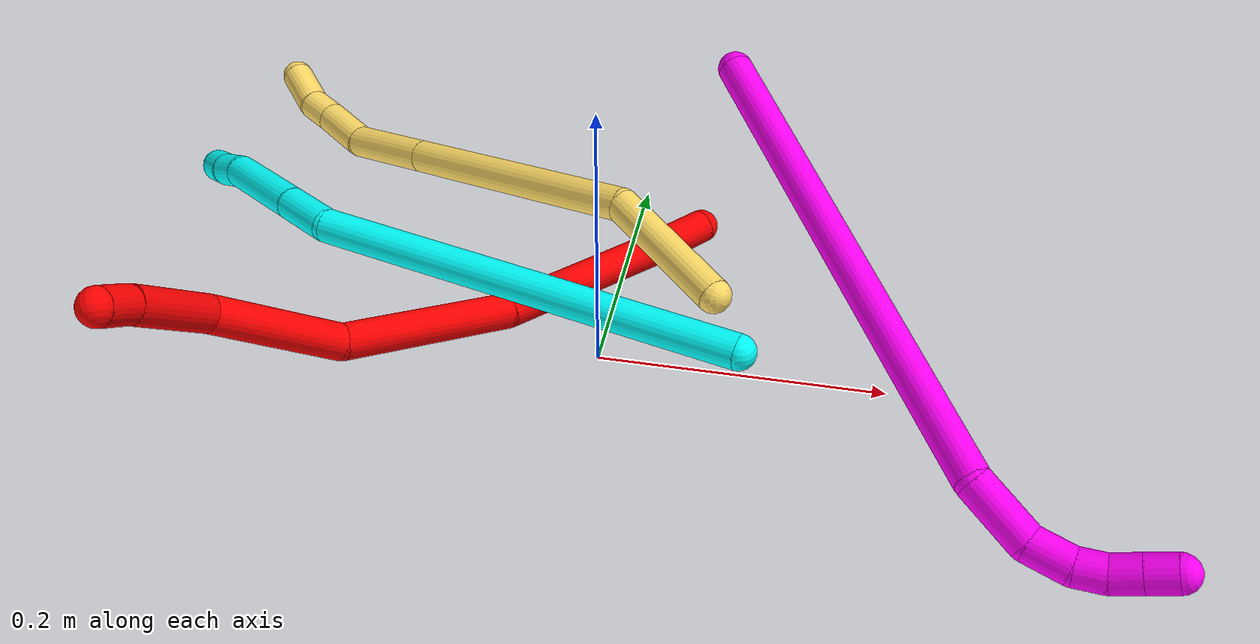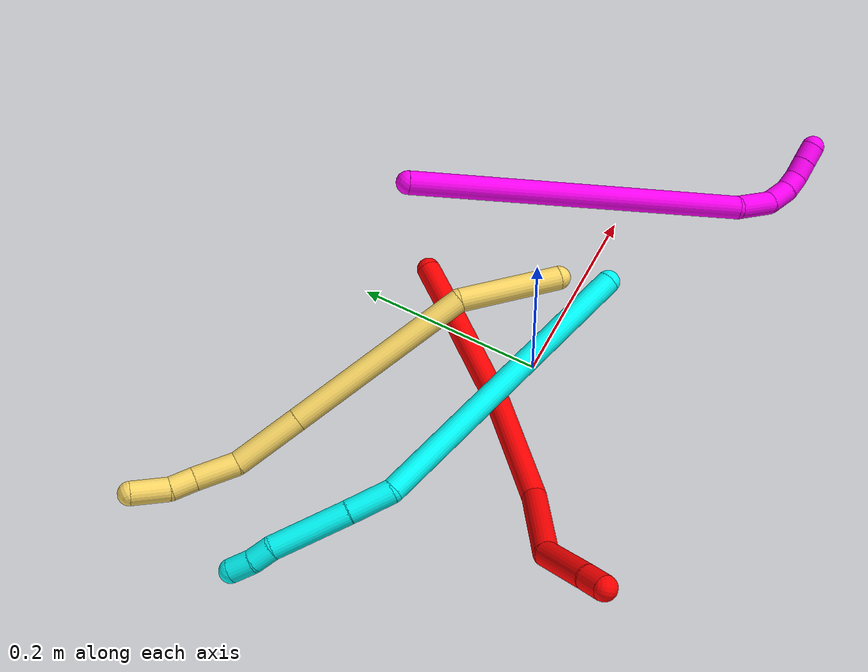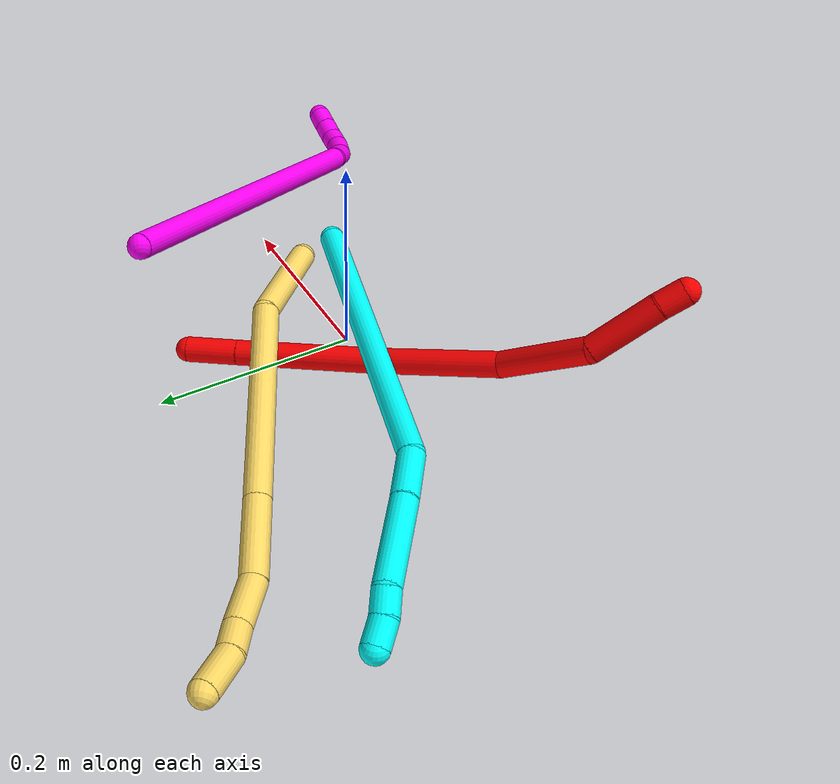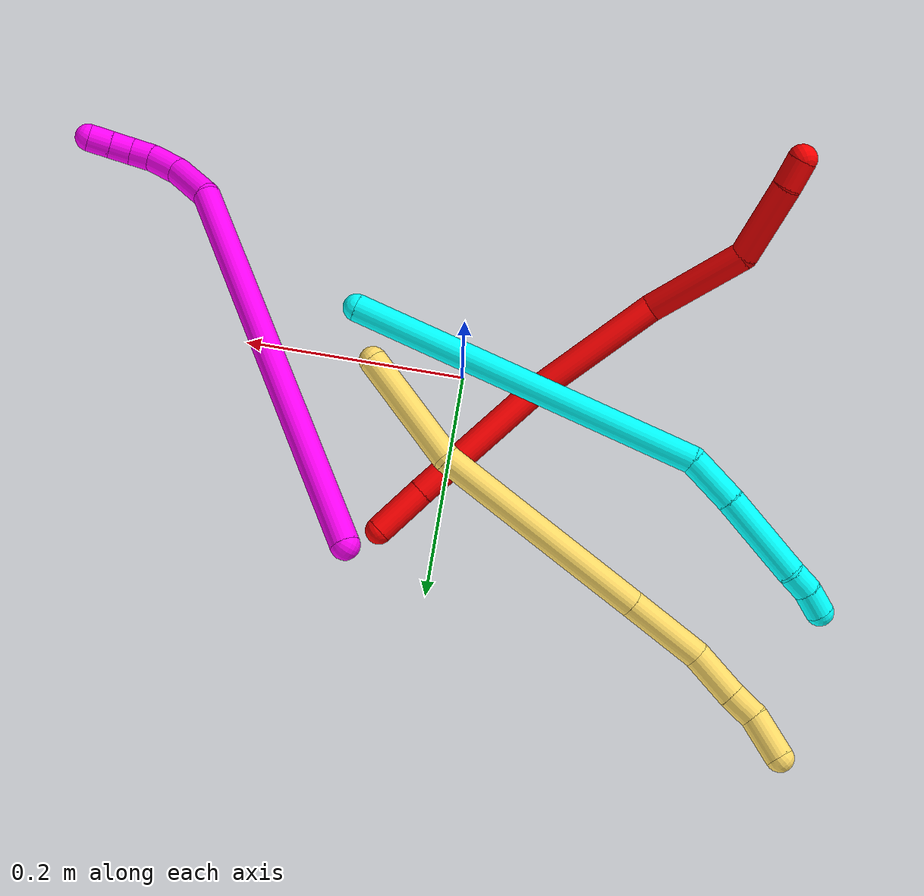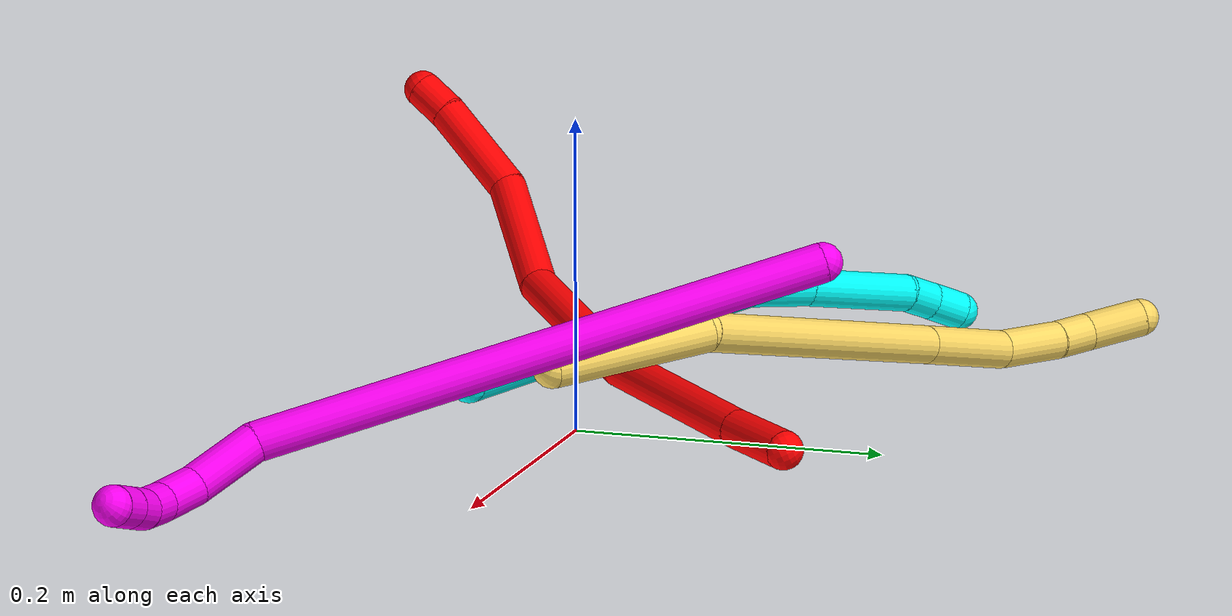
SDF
<sdf version="1.7">
 <world name="default">
  <model name="photoneo_s_sensor">
   <static>1</static>
   <pose>0 0 2 1.57079 1.57079 3.14159</pose>
   <link name="link">
    <inertial><mass>0.1</mass></inertial>
    <sensor name="sensor" type="depth">
     <update_rate>30</update_rate>
     <camera>
      <horizontal_fov>1.22</horizontal_fov>
      <image><width>1920</width><height>1200</height><format>B8G8R8</format></image>
      <clip><near>0.1</near><far>4</far></clip>
      <depth_camera><output>points</output></depth_camera>
     </camera>
     <plugin name="camera_plugin" filename="libgazebo_ros_depth_camera.so">
      <baseline>0.2</baseline>
      <alwaysOn>1</alwaysOn>
      <updateRate>0.0</updateRate>
      <cameraName>camera_ir</cameraName>
      <imageTopicName>/camera/color/image_raw</imageTopicName>
      <cameraInfoTopicName>/camera/color/camera_info</cameraInfoTopicName>
      <depthImageTopicName>/camera/depth/image_raw</depthImageTopicName>
      <depthImageCameraInfoTopicName>/camera/depth/camera_info</depthImageCameraInfoTopicName>
      <pointCloudTopicName>/camera/depth/points</pointCloudTopicName>
      <frameName>fr_optical</frameName>
      <pointCloudCutoff>0.1</pointCloudCutoff>
      <pointCloudCutoffMax>2.0</pointCloudCutoffMax>
      <distortionK1>0</distortionK1>
      <distortionK2>0</distortionK2>
      <distortionK3>0</distortionK3>
      <distortionT1>0</distortionT1>
      <distortionT2>0</distortionT2>
      <CxPrime>0</CxPrime>
      <Cx>0</Cx>
      <Cy>0</Cy>
      <focalLength>0</focalLength>
      <hackBaseline>0</hackBaseline>
     </plugin>
    </sensor>
   </link>
  </model>
  <model name="bin">
   <static>1</static>
   <link name="bottom">
    <collision name="collision-bottom">
     <pose>0 0 -0.01 0 -0 0</pose>
     <geometry><box><size>0.8 0.6 0.02</size></box></geometry>
     <surface>
      <friction><ode><mu>100</mu><mu2>100</mu2></ode></friction>
      <contact><collide_bitmask>65535</collide_bitmask></contact>
     </surface>
    </collision>
   </link>
   <link name="west_wall">
    <collision name="collision-west_wall">
     <pose>-0.41 0 0.1 0 -0 0</pose>
     <geometry><box><size>0.02 0.6 0.2</size></box></geometry>
     <surface>
      <friction><ode><mu>100</mu><mu2>100</mu2></ode></friction>
      <contact><collide_bitmask>65535</collide_bitmask></contact>
     </surface>
    </collision>
   </link>
   <link name="east_wall">
    <collision name="collision-east_wall">
     <pose>0.41 0 0.1 0 -0 0</pose>
     <geometry><box><size>0.02 0.6 0.2</size></box></geometry>
     <surface>
      <friction><ode><mu>100</mu><mu2>100</mu2></ode></friction>
      <contact><collide_bitmask>65535</collide_bitmask></contact>
     </surface>
    </collision>
   </link>
   <link name="south_wall">
    <collision name="collision-south_wall">
     <pose>0 -0.31 0.1 0 -0 0</pose>
     <geometry><box><size>0.8 0.02 0.2</size></box></geometry>
     <surface>
      <friction><ode><mu>100</mu><mu2>100</mu2></ode></friction>
      <contact><collide_bitmask>65535</collide_bitmask></contact>
     </surface>
    </collision>
   </link>
   <link name="north_wall">
    <collision name="collision-north_wall">
     <pose>0 0.31 0.1 0 -0 0</pose>
     <geometry><box><size>0.8 0.02 0.2</size></box></geometry>
     <surface>
      <friction><ode><mu>100</mu><mu2>100</mu2></ode></friction>
      <contact><collide_bitmask>65535</collide_bitmask></contact>
     </surface>
    </collision>
   </link>
  </model>
  <model name="2">
   <static>0</static>
   <link name="2">
    <collision name="collision-cylinder-e_1_1_4">
     <pose>-0.018717 -0.014627 0.008482 1.0453 -0.836107 -0.501084</pose>
     <geometry><cylinder><radius>0.0125</radius><length>0.050447</length></cylinder></geometry>
     <surface>
      <friction><ode><mu>1.16</mu><mu2>1.16</mu2><slip1>0</slip1><slip2>0</slip2></ode></friction>
      <contact><ode><kp>1e+06</kp><kd>1</kd><max_vel>0</max_vel><min_depth>0.001</min_depth></ode></contact>
     </surface>
    </collision>
    <visual name="visual-cylinder-e_1_1_4">
     <pose>-0.018717 -0.014627 0.008482 1.0453 -0.836107 -0.501084</pose>
     <geometry><cylinder><radius>0.0125</radius><length>0.050447</length></cylinder></geometry>
     <material><ambient>1 0 0 1</ambient></material>
    </visual>
    <collision name="collision-cylinder-e_2_4_5">
     <pose>-0.088711 -0.067973 0.037568 1.08176 -0.863214 -0.539759</pose>
     <geometry><cylinder><radius>0.0125</radius><length>0.134952</length></cylinder></geometry>
     <surface>
      <friction><ode><mu>1.16</mu><mu2>1.16</mu2><slip1>0</slip1><slip2>0</slip2></ode></friction>
      <contact><ode><kp>1e+06</kp><kd>1</kd><max_vel>0</max_vel><min_depth>0.001</min_depth></ode></contact>
     </surface>
    </collision>
    <visual name="visual-cylinder-e_2_4_5">
     <pose>-0.088711 -0.067973 0.037568 1.08176 -0.863214 -0.539759</pose>
     <geometry><cylinder><radius>0.0125</radius><length>0.134952</length></cylinder></geometry>
     <material><ambient>1 0 0 1</ambient></material>
    </visual>
    <collision name="collision-cylinder-e_3_5_6">
     <pose>-0.192421 -0.14106 0.066809 1.3246 -0.976448 -0.785302</pose>
     <geometry><cylinder><radius>0.0125</radius><length>0.126572</length></cylinder></geometry>
     <surface>
      <friction><ode><mu>1.16</mu><mu2>1.16</mu2><slip1>0</slip1><slip2>0</slip2></ode></friction>
      <contact><ode><kp>1e+06</kp><kd>1</kd><max_vel>0</max_vel><min_depth>0.001</min_depth></ode></contact>
     </surface>
    </collision>
    <visual name="visual-cylinder-e_3_5_6">
     <pose>-0.192421 -0.14106 0.066809 1.3246 -0.976448 -0.785302</pose>
     <geometry><cylinder><radius>0.0125</radius><length>0.126572</length></cylinder></geometry>
     <material><ambient>1 0 0 1</ambient></material>
    </visual>
    <collision name="collision-cylinder-e_4_6_7">
     <pose>-0.288249 -0.19157 0.068105 1.99765 -1.18289 -1.61321</pose>
     <geometry><cylinder><radius>0.0125</radius><length>0.093754</length></cylinder></geometry>
     <surface>
      <friction><ode><mu>1.16</mu><mu2>1.16</mu2><slip1>0</slip1><slip2>0</slip2></ode></friction>
      <contact><ode><kp>1e+06</kp><kd>1</kd><max_vel>0</max_vel><min_depth>0.001</min_depth></ode></contact>
     </surface>
    </collision>
    <visual name="visual-cylinder-e_4_6_7">
     <pose>-0.288249 -0.19157 0.068105 1.99765 -1.18289 -1.61321</pose>
     <geometry><cylinder><radius>0.0125</radius><length>0.093754</length></cylinder></geometry>
     <material><ambient>1 0 0 1</ambient></material>
    </visual>
    <collision name="collision-cylinder-e_5_7_8">
     <pose>-0.365581 -0.207243 0.066663 -0.079081 -1.39817 0.066495</pose>
     <geometry><cylinder><radius>0.0125</radius><length>0.068901</length></cylinder></geometry>
     <surface>
      <friction><ode><mu>1.16</mu><mu2>1.16</mu2><slip1>0</slip1><slip2>0</slip2></ode></friction>
      <contact><ode><kp>1e+06</kp><kd>1</kd><max_vel>0</max_vel><min_depth>0.001</min_depth></ode></contact>
     </surface>
    </collision>
    <visual name="visual-cylinder-e_5_7_8">
     <pose>-0.365581 -0.207243 0.066663 -0.079081 -1.39817 0.066495</pose>
     <geometry><cylinder><radius>0.0125</radius><length>0.068901</length></cylinder></geometry>
     <material><ambient>1 0 0 1</ambient></material>
    </visual>
    <collision name="collision-cylinder-e_6_8_2">
     <pose>-0.411651 -0.207368 0.076231 0.160038 -1.27354 -0.118468</pose>
     <geometry><cylinder><radius>0.0125</radius><length>0.025375</length></cylinder></geometry>
     <surface>
      <friction><ode><mu>1.16</mu><mu2>1.16</mu2><slip1>0</slip1><slip2>0</slip2></ode></friction>
      <contact><ode><kp>1e+06</kp><kd>1</kd><max_vel>0</max_vel><min_depth>0.001</min_depth></ode></contact>
     </surface>
    </collision>
    <visual name="visual-cylinder-e_6_8_2">
     <pose>-0.411651 -0.207368 0.076231 0.160038 -1.27354 -0.118468</pose>
     <geometry><cylinder><radius>0.0125</radius><length>0.025375</length></cylinder></geometry>
     <material><ambient>1 0 0 1</ambient></material>
    </visual>
    <collision name="collision-sphere-2">
     <pose>-0.423782 -0.20796 0.0799 0 -0 0</pose>
     <geometry><sphere><radius>0.0125</radius></sphere></geometry>
     <surface>
      <friction><ode><mu>1.16</mu><mu2>1.16</mu2><slip1>0</slip1><slip2>0</slip2></ode></friction>
      <contact><ode><kp>1e+06</kp><kd>1</kd><max_vel>0</max_vel><min_depth>0.001</min_depth></ode></contact>
     </surface>
    </collision>
    <visual name="visual-sphere-2">
     <pose>-0.423782 -0.20796 0.0799 0 -0 0</pose>
     <geometry><sphere><radius>0.0125</radius></sphere></geometry>
     <material><ambient>1 0 0 1</ambient></material>
    </visual>
    <collision name="collision-sphere-4">
     <pose>-0.037434 -0.029254 0.016964 0 -0 0</pose>
     <geometry><sphere><radius>0.0125</radius></sphere></geometry>
     <surface>
      <friction><ode><mu>1.16</mu><mu2>1.16</mu2><slip1>0</slip1><slip2>0</slip2></ode></friction>
      <contact><ode><kp>1e+06</kp><kd>1</kd><max_vel>0</max_vel><min_depth>0.001</min_depth></ode></contact>
     </surface>
    </collision>
    <visual name="visual-sphere-4">
     <pose>-0.037434 -0.029254 0.016964 0 -0 0</pose>
     <geometry><sphere><radius>0.0125</radius></sphere></geometry>
     <material><ambient>1 0 0 1</ambient></material>
    </visual>
    <collision name="collision-sphere-1">
     <geometry><sphere><radius>0.0125</radius></sphere></geometry>
     <surface>
      <friction><ode><mu>1.16</mu><mu2>1.16</mu2><slip1>0</slip1><slip2>0</slip2></ode></friction>
      <contact><ode><kp>1e+06</kp><kd>1</kd><max_vel>0</max_vel><min_depth>0.001</min_depth></ode></contact>
     </surface>
    </collision>
    <visual name="visual-sphere-1">
     <geometry><sphere><radius>0.0125</radius></sphere></geometry>
     <material><ambient>1 0 0 1</ambient></material>
    </visual>
    <collision name="collision-sphere-8">
     <pose>-0.39952 -0.206775 0.072563 0 -0 0</pose>
     <geometry><sphere><radius>0.0125</radius></sphere></geometry>
     <surface>
      <friction><ode><mu>1.16</mu><mu2>1.16</mu2><slip1>0</slip1><slip2>0</slip2></ode></friction>
      <contact><ode><kp>1e+06</kp><kd>1</kd><max_vel>0</max_vel><min_depth>0.001</min_depth></ode></contact>
     </surface>
    </collision>
    <visual name="visual-sphere-8">
     <pose>-0.39952 -0.206775 0.072563 0 -0 0</pose>
     <geometry><sphere><radius>0.0125</radius></sphere></geometry>
     <material><ambient>1 0 0 1</ambient></material>
    </visual>
    <collision name="collision-sphere-5">
     <pose>-0.139988 -0.106691 0.058172 0 -0 0</pose>
     <geometry><sphere><radius>0.0125</radius></sphere></geometry>
     <surface>
      <friction><ode><mu>1.16</mu><mu2>1.16</mu2><slip1>0</slip1><slip2>0</slip2></ode></friction>
      <contact><ode><kp>1e+06</kp><kd>1</kd><max_vel>0</max_vel><min_depth>0.001</min_depth></ode></contact>
     </surface>
    </collision>
    <visual name="visual-sphere-5">
     <pose>-0.139988 -0.106691 0.058172 0 -0 0</pose>
     <geometry><sphere><radius>0.0125</radius></sphere></geometry>
     <material><ambient>1 0 0 1</ambient></material>
    </visual>
    <collision name="collision-sphere-6">
     <pose>-0.244854 -0.17543 0.075446 0 -0 0</pose>
     <geometry><sphere><radius>0.0125</radius></sphere></geometry>
     <surface>
      <friction><ode><mu>1.16</mu><mu2>1.16</mu2><slip1>0</slip1><slip2>0</slip2></ode></friction>
      <contact><ode><kp>1e+06</kp><kd>1</kd><max_vel>0</max_vel><min_depth>0.001</min_depth></ode></contact>
     </surface>
    </collision>
    <visual name="visual-sphere-6">
     <pose>-0.244854 -0.17543 0.075446 0 -0 0</pose>
     <geometry><sphere><radius>0.0125</radius></sphere></geometry>
     <material><ambient>1 0 0 1</ambient></material>
    </visual>
    <collision name="collision-sphere-7">
     <pose>-0.331643 -0.20771 0.060764 0 -0 0</pose>
     <geometry><sphere><radius>0.0125</radius></sphere></geometry>
     <surface>
      <friction><ode><mu>1.16</mu><mu2>1.16</mu2><slip1>0</slip1><slip2>0</slip2></ode></friction>
      <contact><ode><kp>1e+06</kp><kd>1</kd><max_vel>0</max_vel><min_depth>0.001</min_depth></ode></contact>
     </surface>
    </collision>
    <visual name="visual-sphere-7">
     <pose>-0.331643 -0.20771 0.060764 0 -0 0</pose>
     <geometry><sphere><radius>0.0125</radius></sphere></geometry>
     <material><ambient>1 0 0 1</ambient></material>
    </visual>
    <inertial>
     <pose>-0.19986 -0.130534 0.053733 0 -0 0</pose>
     <mass>0.5</mass>
     <inertia><ixx>-5e-06</ixx><ixy>0</ixy><ixz>0</ixz><iyy>0.000203</iyy><iyz>0</iyz><izz>0.000665</izz></inertia>
    </inertial>
   </link>
   <pose>0.049699 0.151118 0.011488 2.22008 0.789616 0.991381</pose>
  </model>
  <model name="3">
   <static>0</static>
   <link name="3">
    <collision name="collision-cylinder-e_1_1_4">
     <pose>-0.082379 0.137709 0.018798 -1.43513 -0.535045 0.469613</pose>
     <geometry><cylinder><radius>0.0125</radius><length>0.323132</length></cylinder></geometry>
     <surface>
      <friction><ode><mu>1.16</mu><mu2>1.16</mu2><slip1>0</slip1><slip2>0</slip2></ode></friction>
      <contact><ode><kp>1e+06</kp><kd>1</kd><max_vel>0</max_vel><min_depth>0.001</min_depth></ode></contact>
     </surface>
    </collision>
    <visual name="visual-cylinder-e_1_1_4">
     <pose>-0.082379 0.137709 0.018798 -1.43513 -0.535045 0.469613</pose>
     <geometry><cylinder><radius>0.0125</radius><length>0.323132</length></cylinder></geometry>
     <material><ambient>0.003922 1 0.996078 1</ambient></material>
    </visual>
    <collision name="collision-cylinder-e_2_4_5">
     <pose>-0.182928 0.289338 0.043498 -1.16978 -0.876811 0.602039</pose>
     <geometry><cylinder><radius>0.0125</radius><length>0.047274</length></cylinder></geometry>
     <surface>
      <friction><ode><mu>1.16</mu><mu2>1.16</mu2><slip1>0</slip1><slip2>0</slip2></ode></friction>
      <contact><ode><kp>1e+06</kp><kd>1</kd><max_vel>0</max_vel><min_depth>0.001</min_depth></ode></contact>
     </surface>
    </collision>
    <visual name="visual-cylinder-e_2_4_5">
     <pose>-0.182928 0.289338 0.043498 -1.16978 -0.876811 0.602039</pose>
     <geometry><cylinder><radius>0.0125</radius><length>0.047274</length></cylinder></geometry>
     <material><ambient>0.003922 1 0.996078 1</ambient></material>
    </visual>
    <collision name="collision-cylinder-e_3_5_6">
     <pose>-0.233121 0.325754 0.061758 -1.06846 -0.895108 0.553426</pose>
     <geometry><cylinder><radius>0.0125</radius><length>0.082081</length></cylinder></geometry>
     <surface>
      <friction><ode><mu>1.16</mu><mu2>1.16</mu2><slip1>0</slip1><slip2>0</slip2></ode></friction>
      <contact><ode><kp>1e+06</kp><kd>1</kd><max_vel>0</max_vel><min_depth>0.001</min_depth></ode></contact>
     </surface>
    </collision>
    <visual name="visual-cylinder-e_3_5_6">
     <pose>-0.233121 0.325754 0.061758 -1.06846 -0.895108 0.553426</pose>
     <geometry><cylinder><radius>0.0125</radius><length>0.082081</length></cylinder></geometry>
     <material><ambient>0.003922 1 0.996078 1</ambient></material>
    </visual>
    <collision name="collision-cylinder-e_4_6_7">
     <pose>-0.272664 0.354936 0.079731 -0.872324 -0.711039 0.342728</pose>
     <geometry><cylinder><radius>0.0125</radius><length>0.023043</length></cylinder></geometry>
     <surface>
      <friction><ode><mu>1.16</mu><mu2>1.16</mu2><slip1>0</slip1><slip2>0</slip2></ode></friction>
      <contact><ode><kp>1e+06</kp><kd>1</kd><max_vel>0</max_vel><min_depth>0.001</min_depth></ode></contact>
     </surface>
    </collision>
    <visual name="visual-cylinder-e_4_6_7">
     <pose>-0.272664 0.354936 0.079731 -0.872324 -0.711039 0.342728</pose>
     <geometry><cylinder><radius>0.0125</radius><length>0.023043</length></cylinder></geometry>
     <material><ambient>0.003922 1 0.996078 1</ambient></material>
    </visual>
    <collision name="collision-cylinder-e_5_7_2">
     <pose>-0.289534 0.366596 0.091469 -0.682169 -0.869934 0.326917</pose>
     <geometry><cylinder><radius>0.0125</radius><length>0.024469</length></cylinder></geometry>
     <surface>
      <friction><ode><mu>1.16</mu><mu2>1.16</mu2><slip1>0</slip1><slip2>0</slip2></ode></friction>
      <contact><ode><kp>1e+06</kp><kd>1</kd><max_vel>0</max_vel><min_depth>0.001</min_depth></ode></contact>
     </surface>
    </collision>
    <visual name="visual-cylinder-e_5_7_2">
     <pose>-0.289534 0.366596 0.091469 -0.682169 -0.869934 0.326917</pose>
     <geometry><cylinder><radius>0.0125</radius><length>0.024469</length></cylinder></geometry>
     <material><ambient>0.003922 1 0.996078 1</ambient></material>
    </visual>
    <collision name="collision-sphere-2">
     <pose>-0.298884 0.371571 0.097593 0 -0 0</pose>
     <geometry><sphere><radius>0.0125</radius></sphere></geometry>
     <surface>
      <friction><ode><mu>1.16</mu><mu2>1.16</mu2><slip1>0</slip1><slip2>0</slip2></ode></friction>
      <contact><ode><kp>1e+06</kp><kd>1</kd><max_vel>0</max_vel><min_depth>0.001</min_depth></ode></contact>
     </surface>
    </collision>
    <visual name="visual-sphere-2">
     <pose>-0.298884 0.371571 0.097593 0 -0 0</pose>
     <geometry><sphere><radius>0.0125</radius></sphere></geometry>
     <material><ambient>0.003922 1 0.996078 1</ambient></material>
    </visual>
    <collision name="collision-sphere-7">
     <pose>-0.280183 0.361622 0.085344 0 -0 0</pose>
     <geometry><sphere><radius>0.0125</radius></sphere></geometry>
     <surface>
      <friction><ode><mu>1.16</mu><mu2>1.16</mu2><slip1>0</slip1><slip2>0</slip2></ode></friction>
      <contact><ode><kp>1e+06</kp><kd>1</kd><max_vel>0</max_vel><min_depth>0.001</min_depth></ode></contact>
     </surface>
    </collision>
    <visual name="visual-sphere-7">
     <pose>-0.280183 0.361622 0.085344 0 -0 0</pose>
     <geometry><sphere><radius>0.0125</radius></sphere></geometry>
     <material><ambient>0.003922 1 0.996078 1</ambient></material>
    </visual>
    <collision name="collision-sphere-6">
     <pose>-0.265144 0.348251 0.074117 0 -0 0</pose>
     <geometry><sphere><radius>0.0125</radius></sphere></geometry>
     <surface>
      <friction><ode><mu>1.16</mu><mu2>1.16</mu2><slip1>0</slip1><slip2>0</slip2></ode></friction>
      <contact><ode><kp>1e+06</kp><kd>1</kd><max_vel>0</max_vel><min_depth>0.001</min_depth></ode></contact>
     </surface>
    </collision>
    <visual name="visual-sphere-6">
     <pose>-0.265144 0.348251 0.074117 0 -0 0</pose>
     <geometry><sphere><radius>0.0125</radius></sphere></geometry>
     <material><ambient>0.003922 1 0.996078 1</ambient></material>
    </visual>
    <collision name="collision-sphere-5">
     <pose>-0.201098 0.303257 0.0494 0 -0 0</pose>
     <geometry><sphere><radius>0.0125</radius></sphere></geometry>
     <surface>
      <friction><ode><mu>1.16</mu><mu2>1.16</mu2><slip1>0</slip1><slip2>0</slip2></ode></friction>
      <contact><ode><kp>1e+06</kp><kd>1</kd><max_vel>0</max_vel><min_depth>0.001</min_depth></ode></contact>
     </surface>
    </collision>
    <visual name="visual-sphere-5">
     <pose>-0.201098 0.303257 0.0494 0 -0 0</pose>
     <geometry><sphere><radius>0.0125</radius></sphere></geometry>
     <material><ambient>0.003922 1 0.996078 1</ambient></material>
    </visual>
    <collision name="collision-sphere-1">
     <geometry><sphere><radius>0.0125</radius></sphere></geometry>
     <surface>
      <friction><ode><mu>1.16</mu><mu2>1.16</mu2><slip1>0</slip1><slip2>0</slip2></ode></friction>
      <contact><ode><kp>1e+06</kp><kd>1</kd><max_vel>0</max_vel><min_depth>0.001</min_depth></ode></contact>
     </surface>
    </collision>
    <visual name="visual-sphere-1">
     <geometry><sphere><radius>0.0125</radius></sphere></geometry>
     <material><ambient>0.003922 1 0.996078 1</ambient></material>
    </visual>
    <collision name="collision-sphere-4">
     <pose>-0.164759 0.275419 0.037597 0 -0 0</pose>
     <geometry><sphere><radius>0.0125</radius></sphere></geometry>
     <surface>
      <friction><ode><mu>1.16</mu><mu2>1.16</mu2><slip1>0</slip1><slip2>0</slip2></ode></friction>
      <contact><ode><kp>1e+06</kp><kd>1</kd><max_vel>0</max_vel><min_depth>0.001</min_depth></ode></contact>
     </surface>
    </collision>
    <visual name="visual-sphere-4">
     <pose>-0.164759 0.275419 0.037597 0 -0 0</pose>
     <geometry><sphere><radius>0.0125</radius></sphere></geometry>
     <material><ambient>0.003922 1 0.996078 1</ambient></material>
    </visual>
    <inertial>
     <pose>-0.13554 0.204128 0.034551 0 -0 0</pose>
     <mass>0.5</mass>
     <inertia>
      <ixx>0.003298</ixx>
      <ixy>0</ixy>
      <ixz>0</ixz>
      <iyy>0.002185</iyy>
      <iyz>0</iyz>
      <izz>-0.000945</izz>
     </inertia>
    </inertial>
   </link>
   <pose>0.100923 -0.035783 0.052193 3.09669 0.135571 -1.29575</pose>
  </model>
  <model name="5">
   <static>0</static>
   <link name="5">
    <collision name="collision-cylinder-e_1_1_4">
     <pose>-0.018024 0.006231 0.051249 -0.120992 -0.335892 0.020538</pose>
     <geometry><cylinder><radius>0.0125</radius><length>0.109365</length></cylinder></geometry>
     <surface>
      <friction><ode><mu>1.16</mu><mu2>1.16</mu2><slip1>0</slip1><slip2>0</slip2></ode></friction>
      <contact><ode><kp>1e+06</kp><kd>1</kd><max_vel>0</max_vel><min_depth>0.001</min_depth></ode></contact>
     </surface>
    </collision>
    <visual name="visual-cylinder-e_1_1_4">
     <pose>-0.018024 0.006231 0.051249 -0.120992 -0.335892 0.020538</pose>
     <geometry><cylinder><radius>0.0125</radius><length>0.109365</length></cylinder></geometry>
     <material><ambient>1 0.858824 0.4 1</ambient></material>
    </visual>
    <collision name="collision-cylinder-e_2_4_5">
     <pose>-0.026764 0.027814 0.203512 -0.150821 0.09062 -0.006851</pose>
     <geometry><cylinder><radius>0.0125</radius><length>0.205188</length></cylinder></geometry>
     <surface>
      <friction><ode><mu>1.16</mu><mu2>1.16</mu2><slip1>0</slip1><slip2>0</slip2></ode></friction>
      <contact><ode><kp>1e+06</kp><kd>1</kd><max_vel>0</max_vel><min_depth>0.001</min_depth></ode></contact>
     </surface>
    </collision>
    <visual name="visual-cylinder-e_2_4_5">
     <pose>-0.026764 0.027814 0.203512 -0.150821 0.09062 -0.006851</pose>
     <geometry><cylinder><radius>0.0125</radius><length>0.205188</length></cylinder></geometry>
     <material><ambient>1 0.858824 0.4 1</ambient></material>
    </visual>
    <collision name="collision-cylinder-e_3_5_6">
     <pose>-0.014115 0.048504 0.341047 -0.145135 0.090898 -0.006612</pose>
     <geometry><cylinder><radius>0.0125</radius><length>0.074127</length></cylinder></geometry>
     <surface>
      <friction><ode><mu>1.16</mu><mu2>1.16</mu2><slip1>0</slip1><slip2>0</slip2></ode></friction>
      <contact><ode><kp>1e+06</kp><kd>1</kd><max_vel>0</max_vel><min_depth>0.001</min_depth></ode></contact>
     </surface>
    </collision>
    <visual name="visual-cylinder-e_3_5_6">
     <pose>-0.014115 0.048504 0.341047 -0.145135 0.090898 -0.006612</pose>
     <geometry><cylinder><radius>0.0125</radius><length>0.074127</length></cylinder></geometry>
     <material><ambient>1 0.858824 0.4 1</ambient></material>
    </visual>
    <collision name="collision-cylinder-e_4_6_7">
     <pose>-0.015699 0.05658 0.39961 -0.123603 -0.219197 0.013618</pose>
     <geometry><cylinder><radius>0.0125</radius><length>0.04551</length></cylinder></geometry>
     <surface>
      <friction><ode><mu>1.16</mu><mu2>1.16</mu2><slip1>0</slip1><slip2>0</slip2></ode></friction>
      <contact><ode><kp>1e+06</kp><kd>1</kd><max_vel>0</max_vel><min_depth>0.001</min_depth></ode></contact>
     </surface>
    </collision>
    <visual name="visual-cylinder-e_4_6_7">
     <pose>-0.015699 0.05658 0.39961 -0.123603 -0.219197 0.013618</pose>
     <geometry><cylinder><radius>0.0125</radius><length>0.04551</length></cylinder></geometry>
     <material><ambient>1 0.858824 0.4 1</ambient></material>
    </visual>
    <collision name="collision-cylinder-e_5_7_8">
     <pose>-0.023317 0.062132 0.433994 -0.22413 -0.207868 0.023476</pose>
     <geometry><cylinder><radius>0.0125</radius><length>0.025877</length></cylinder></geometry>
     <surface>
      <friction><ode><mu>1.16</mu><mu2>1.16</mu2><slip1>0</slip1><slip2>0</slip2></ode></friction>
      <contact><ode><kp>1e+06</kp><kd>1</kd><max_vel>0</max_vel><min_depth>0.001</min_depth></ode></contact>
     </surface>
    </collision>
    <visual name="visual-cylinder-e_5_7_8">
     <pose>-0.023317 0.062132 0.433994 -0.22413 -0.207868 0.023476</pose>
     <geometry><cylinder><radius>0.0125</radius><length>0.025877</length></cylinder></geometry>
     <material><ambient>1 0.858824 0.4 1</ambient></material>
    </visual>
    <collision name="collision-cylinder-e_6_8_2">
     <pose>-0.034883 0.066172 0.464171 -0.068669 -0.461768 0.016149</pose>
     <geometry><cylinder><radius>0.0125</radius><length>0.039934</length></cylinder></geometry>
     <surface>
      <friction><ode><mu>1.16</mu><mu2>1.16</mu2><slip1>0</slip1><slip2>0</slip2></ode></friction>
      <contact><ode><kp>1e+06</kp><kd>1</kd><max_vel>0</max_vel><min_depth>0.001</min_depth></ode></contact>
     </surface>
    </collision>
    <visual name="visual-cylinder-e_6_8_2">
     <pose>-0.034883 0.066172 0.464171 -0.068669 -0.461768 0.016149</pose>
     <geometry><cylinder><radius>0.0125</radius><length>0.039934</length></cylinder></geometry>
     <material><ambient>1 0.858824 0.4 1</ambient></material>
    </visual>
    <collision name="collision-sphere-2">
     <pose>-0.043779 0.067399 0.482005 0 -0 0</pose>
     <geometry><sphere><radius>0.0125</radius></sphere></geometry>
     <surface>
      <friction><ode><mu>1.16</mu><mu2>1.16</mu2><slip1>0</slip1><slip2>0</slip2></ode></friction>
      <contact><ode><kp>1e+06</kp><kd>1</kd><max_vel>0</max_vel><min_depth>0.001</min_depth></ode></contact>
     </surface>
    </collision>
    <visual name="visual-sphere-2">
     <pose>-0.043779 0.067399 0.482005 0 -0 0</pose>
     <geometry><sphere><radius>0.0125</radius></sphere></geometry>
     <material><ambient>1 0.858824 0.4 1</ambient></material>
    </visual>
    <collision name="collision-sphere-4">
     <pose>-0.036048 0.012462 0.102499 0 -0 0</pose>
     <geometry><sphere><radius>0.0125</radius></sphere></geometry>
     <surface>
      <friction><ode><mu>1.16</mu><mu2>1.16</mu2><slip1>0</slip1><slip2>0</slip2></ode></friction>
      <contact><ode><kp>1e+06</kp><kd>1</kd><max_vel>0</max_vel><min_depth>0.001</min_depth></ode></contact>
     </surface>
    </collision>
    <visual name="visual-sphere-4">
     <pose>-0.036048 0.012462 0.102499 0 -0 0</pose>
     <geometry><sphere><radius>0.0125</radius></sphere></geometry>
     <material><ambient>1 0.858824 0.4 1</ambient></material>
    </visual>
    <collision name="collision-sphere-1">
     <geometry><sphere><radius>0.0125</radius></sphere></geometry>
     <surface>
      <friction><ode><mu>1.16</mu><mu2>1.16</mu2><slip1>0</slip1><slip2>0</slip2></ode></friction>
      <contact><ode><kp>1e+06</kp><kd>1</kd><max_vel>0</max_vel><min_depth>0.001</min_depth></ode></contact>
     </surface>
    </collision>
    <visual name="visual-sphere-1">
     <geometry><sphere><radius>0.0125</radius></sphere></geometry>
     <material><ambient>1 0.858824 0.4 1</ambient></material>
    </visual>
    <collision name="collision-sphere-8">
     <pose>-0.025987 0.064946 0.446337 0 -0 0</pose>
     <geometry><sphere><radius>0.0125</radius></sphere></geometry>
     <surface>
      <friction><ode><mu>1.16</mu><mu2>1.16</mu2><slip1>0</slip1><slip2>0</slip2></ode></friction>
      <contact><ode><kp>1e+06</kp><kd>1</kd><max_vel>0</max_vel><min_depth>0.001</min_depth></ode></contact>
     </surface>
    </collision>
    <visual name="visual-sphere-8">
     <pose>-0.025987 0.064946 0.446337 0 -0 0</pose>
     <geometry><sphere><radius>0.0125</radius></sphere></geometry>
     <material><ambient>1 0.858824 0.4 1</ambient></material>
    </visual>
    <collision name="collision-sphere-5">
     <pose>-0.017479 0.043165 0.304525 0 -0 0</pose>
     <geometry><sphere><radius>0.0125</radius></sphere></geometry>
     <surface>
      <friction><ode><mu>1.16</mu><mu2>1.16</mu2><slip1>0</slip1><slip2>0</slip2></ode></friction>
      <contact><ode><kp>1e+06</kp><kd>1</kd><max_vel>0</max_vel><min_depth>0.001</min_depth></ode></contact>
     </surface>
    </collision>
    <visual name="visual-sphere-5">
     <pose>-0.017479 0.043165 0.304525 0 -0 0</pose>
     <geometry><sphere><radius>0.0125</radius></sphere></geometry>
     <material><ambient>1 0.858824 0.4 1</ambient></material>
    </visual>
    <collision name="collision-sphere-6">
     <pose>-0.010751 0.053842 0.377569 0 -0 0</pose>
     <geometry><sphere><radius>0.0125</radius></sphere></geometry>
     <surface>
      <friction><ode><mu>1.16</mu><mu2>1.16</mu2><slip1>0</slip1><slip2>0</slip2></ode></friction>
      <contact><ode><kp>1e+06</kp><kd>1</kd><max_vel>0</max_vel><min_depth>0.001</min_depth></ode></contact>
     </surface>
    </collision>
    <visual name="visual-sphere-6">
     <pose>-0.010751 0.053842 0.377569 0 -0 0</pose>
     <geometry><sphere><radius>0.0125</radius></sphere></geometry>
     <material><ambient>1 0.858824 0.4 1</ambient></material>
    </visual>
    <collision name="collision-sphere-7">
     <pose>-0.020647 0.059318 0.421651 0 -0 0</pose>
     <geometry><sphere><radius>0.0125</radius></sphere></geometry>
     <surface>
      <friction><ode><mu>1.16</mu><mu2>1.16</mu2><slip1>0</slip1><slip2>0</slip2></ode></friction>
      <contact><ode><kp>1e+06</kp><kd>1</kd><max_vel>0</max_vel><min_depth>0.001</min_depth></ode></contact>
     </surface>
    </collision>
    <visual name="visual-sphere-7">
     <pose>-0.020647 0.059318 0.421651 0 -0 0</pose>
     <geometry><sphere><radius>0.0125</radius></sphere></geometry>
     <material><ambient>1 0.858824 0.4 1</ambient></material>
    </visual>
    <inertial>
     <pose>-0.02244 0.033618 0.241193 0 -0 0</pose>
     <mass>0.5</mass>
     <inertia>
      <ixx>0.00088</ixx>
      <ixy>0</ixy>
      <ixz>0</ixz>
      <iyy>0.00089</iyy>
      <iyz>0</iyz>
      <izz>-0.000118</izz>
     </inertia>
    </inertial>
   </link>
   <pose>0.077724 0.010516 0.059279 1.93154 0.852067 -1.94918</pose>
  </model>
  <model name="10">
   <static>0</static>
   <link name="10">
    <collision name="collision-cylinder-e_1_1_4">
     <pose>0.141098 -0.059971 0.097347 0.552142 0.889781 0.268517</pose>
     <geometry><cylinder><radius>0.0125</radius><length>0.363217</length></cylinder></geometry>
     <surface>
      <friction><ode><mu>1.16</mu><mu2>1.16</mu2><slip1>0</slip1><slip2>0</slip2></ode></friction>
      <contact><ode><kp>1e+06</kp><kd>1</kd><max_vel>0</max_vel><min_depth>0.001</min_depth></ode></contact>
     </surface>
    </collision>
    <visual name="visual-cylinder-e_1_1_4">
     <pose>0.141098 -0.059971 0.097347 0.552142 0.889781 0.268517</pose>
     <geometry><cylinder><radius>0.0125</radius><length>0.363217</length></cylinder></geometry>
     <material><ambient>1 0 0.964706 1</ambient></material>
    </visual>
    <collision name="collision-cylinder-e_2_4_5">
     <pose>0.301831 -0.118236 0.207875 -0.128769 0.975785 -0.068404</pose>
     <geometry><cylinder><radius>0.0125</radius><length>0.047422</length></cylinder></geometry>
     <surface>
      <friction><ode><mu>1.16</mu><mu2>1.16</mu2><slip1>0</slip1><slip2>0</slip2></ode></friction>
      <contact><ode><kp>1e+06</kp><kd>1</kd><max_vel>0</max_vel><min_depth>0.001</min_depth></ode></contact>
     </surface>
    </collision>
    <visual name="visual-cylinder-e_2_4_5">
     <pose>0.301831 -0.118236 0.207875 -0.128769 0.975785 -0.068404</pose>
     <geometry><cylinder><radius>0.0125</radius><length>0.047422</length></cylinder></geometry>
     <material><ambient>1 0 0.964706 1</ambient></material>
    </visual>
    <collision name="collision-cylinder-e_3_5_6">
     <pose>0.329642 -0.113484 0.232587 -0.258169 0.600808 -0.080379</pose>
     <geometry><cylinder><radius>0.0125</radius><length>0.028919</length></cylinder></geometry>
     <surface>
      <friction><ode><mu>1.16</mu><mu2>1.16</mu2><slip1>0</slip1><slip2>0</slip2></ode></friction>
      <contact><ode><kp>1e+06</kp><kd>1</kd><max_vel>0</max_vel><min_depth>0.001</min_depth></ode></contact>
     </surface>
    </collision>
    <visual name="visual-cylinder-e_3_5_6">
     <pose>0.329642 -0.113484 0.232587 -0.258169 0.600808 -0.080379</pose>
     <geometry><cylinder><radius>0.0125</radius><length>0.028919</length></cylinder></geometry>
     <material><ambient>1 0 0.964706 1</ambient></material>
    </visual>
    <collision name="collision-cylinder-e_4_6_7">
     <pose>0.341109 -0.106993 0.25302 -0.369362 0.332253 -0.062625</pose>
     <geometry><cylinder><radius>0.0125</radius><length>0.020194</length></cylinder></geometry>
     <surface>
      <friction><ode><mu>1.16</mu><mu2>1.16</mu2><slip1>0</slip1><slip2>0</slip2></ode></friction>
      <contact><ode><kp>1e+06</kp><kd>1</kd><max_vel>0</max_vel><min_depth>0.001</min_depth></ode></contact>
     </surface>
    </collision>
    <visual name="visual-cylinder-e_4_6_7">
     <pose>0.341109 -0.106993 0.25302 -0.369362 0.332253 -0.062625</pose>
     <geometry><cylinder><radius>0.0125</radius><length>0.020194</length></cylinder></geometry>
     <material><ambient>1 0 0.964706 1</ambient></material>
    </visual>
    <collision name="collision-cylinder-e_5_7_8">
     <pose>0.345108 -0.100539 0.271504 -0.304188 0.070112 -0.010751</pose>
     <geometry><cylinder><radius>0.0125</radius><length>0.020138</length></cylinder></geometry>
     <surface>
      <friction><ode><mu>1.16</mu><mu2>1.16</mu2><slip1>0</slip1><slip2>0</slip2></ode></friction>
      <contact><ode><kp>1e+06</kp><kd>1</kd><max_vel>0</max_vel><min_depth>0.001</min_depth></ode></contact>
     </surface>
    </collision>
    <visual name="visual-cylinder-e_5_7_8">
     <pose>0.345108 -0.100539 0.271504 -0.304188 0.070112 -0.010751</pose>
     <geometry><cylinder><radius>0.0125</radius><length>0.020138</length></cylinder></geometry>
     <material><ambient>1 0 0.964706 1</ambient></material>
    </visual>
    <collision name="collision-cylinder-e_6_8_2">
     <pose>0.346608 -0.094584 0.290668 -0.29839 0.07916 -0.011905</pose>
     <geometry><cylinder><radius>0.0125</radius><length>0.020111</length></cylinder></geometry>
     <surface>
      <friction><ode><mu>1.16</mu><mu2>1.16</mu2><slip1>0</slip1><slip2>0</slip2></ode></friction>
      <contact><ode><kp>1e+06</kp><kd>1</kd><max_vel>0</max_vel><min_depth>0.001</min_depth></ode></contact>
     </surface>
    </collision>
    <visual name="visual-cylinder-e_6_8_2">
     <pose>0.346608 -0.094584 0.290668 -0.29839 0.07916 -0.011905</pose>
     <geometry><cylinder><radius>0.0125</radius><length>0.020111</length></cylinder></geometry>
     <material><ambient>1 0 0.964706 1</ambient></material>
    </visual>
    <collision name="collision-sphere-2">
     <pose>0.347403 -0.091637 0.300249 0 -0 0</pose>
     <geometry><sphere><radius>0.0125</radius></sphere></geometry>
     <surface>
      <friction><ode><mu>1.16</mu><mu2>1.16</mu2><slip1>0</slip1><slip2>0</slip2></ode></friction>
      <contact><ode><kp>1e+06</kp><kd>1</kd><max_vel>0</max_vel><min_depth>0.001</min_depth></ode></contact>
     </surface>
    </collision>
    <visual name="visual-sphere-2">
     <pose>0.347403 -0.091637 0.300249 0 -0 0</pose>
     <geometry><sphere><radius>0.0125</radius></sphere></geometry>
     <material><ambient>1 0 0.964706 1</ambient></material>
    </visual>
    <collision name="collision-sphere-4">
     <pose>0.282195 -0.119943 0.194694 0 -0 0</pose>
     <geometry><sphere><radius>0.0125</radius></sphere></geometry>
     <surface>
      <friction><ode><mu>1.16</mu><mu2>1.16</mu2><slip1>0</slip1><slip2>0</slip2></ode></friction>
      <contact><ode><kp>1e+06</kp><kd>1</kd><max_vel>0</max_vel><min_depth>0.001</min_depth></ode></contact>
     </surface>
    </collision>
    <visual name="visual-sphere-4">
     <pose>0.282195 -0.119943 0.194694 0 -0 0</pose>
     <geometry><sphere><radius>0.0125</radius></sphere></geometry>
     <material><ambient>1 0 0.964706 1</ambient></material>
    </visual>
    <collision name="collision-sphere-1">
     <geometry><sphere><radius>0.0125</radius></sphere></geometry>
     <surface>
      <friction><ode><mu>1.16</mu><mu2>1.16</mu2><slip1>0</slip1><slip2>0</slip2></ode></friction>
      <contact><ode><kp>1e+06</kp><kd>1</kd><max_vel>0</max_vel><min_depth>0.001</min_depth></ode></contact>
     </surface>
    </collision>
    <visual name="visual-sphere-1">
     <geometry><sphere><radius>0.0125</radius></sphere></geometry>
     <material><ambient>1 0 0.964706 1</ambient></material>
    </visual>
    <collision name="collision-sphere-8">
     <pose>0.345813 -0.09753 0.281087 0 -0 0</pose>
     <geometry><sphere><radius>0.0125</radius></sphere></geometry>
     <surface>
      <friction><ode><mu>1.16</mu><mu2>1.16</mu2><slip1>0</slip1><slip2>0</slip2></ode></friction>
      <contact><ode><kp>1e+06</kp><kd>1</kd><max_vel>0</max_vel><min_depth>0.001</min_depth></ode></contact>
     </surface>
    </collision>
    <visual name="visual-sphere-8">
     <pose>0.345813 -0.09753 0.281087 0 -0 0</pose>
     <geometry><sphere><radius>0.0125</radius></sphere></geometry>
     <material><ambient>1 0 0.964706 1</ambient></material>
    </visual>
    <collision name="collision-sphere-5">
     <pose>0.321468 -0.116529 0.221055 0 -0 0</pose>
     <geometry><sphere><radius>0.0125</radius></sphere></geometry>
     <surface>
      <friction><ode><mu>1.16</mu><mu2>1.16</mu2><slip1>0</slip1><slip2>0</slip2></ode></friction>
      <contact><ode><kp>1e+06</kp><kd>1</kd><max_vel>0</max_vel><min_depth>0.001</min_depth></ode></contact>
     </surface>
    </collision>
    <visual name="visual-sphere-5">
     <pose>0.321468 -0.116529 0.221055 0 -0 0</pose>
     <geometry><sphere><radius>0.0125</radius></sphere></geometry>
     <material><ambient>1 0 0.964706 1</ambient></material>
    </visual>
    <collision name="collision-sphere-6">
     <pose>0.337816 -0.110439 0.244119 0 -0 0</pose>
     <geometry><sphere><radius>0.0125</radius></sphere></geometry>
     <surface>
      <friction><ode><mu>1.16</mu><mu2>1.16</mu2><slip1>0</slip1><slip2>0</slip2></ode></friction>
      <contact><ode><kp>1e+06</kp><kd>1</kd><max_vel>0</max_vel><min_depth>0.001</min_depth></ode></contact>
     </surface>
    </collision>
    <visual name="visual-sphere-6">
     <pose>0.337816 -0.110439 0.244119 0 -0 0</pose>
     <geometry><sphere><radius>0.0125</radius></sphere></geometry>
     <material><ambient>1 0 0.964706 1</ambient></material>
    </visual>
    <collision name="collision-sphere-7">
     <pose>0.344402 -0.103547 0.261921 0 -0 0</pose>
     <geometry><sphere><radius>0.0125</radius></sphere></geometry>
     <surface>
      <friction><ode><mu>1.16</mu><mu2>1.16</mu2><slip1>0</slip1><slip2>0</slip2></ode></friction>
      <contact><ode><kp>1e+06</kp><kd>1</kd><max_vel>0</max_vel><min_depth>0.001</min_depth></ode></contact>
     </surface>
    </collision>
    <visual name="visual-sphere-7">
     <pose>0.344402 -0.103547 0.261921 0 -0 0</pose>
     <geometry><sphere><radius>0.0125</radius></sphere></geometry>
     <material><ambient>1 0 0.964706 1</ambient></material>
    </visual>
    <inertial>
     <pose>0.191808 -0.073518 0.136729 0 -0 0</pose>
     <mass>0.5</mass>
     <inertia>
      <ixx>0.003141</ixx>
      <ixy>0</ixy>
      <ixz>0</ixz>
      <iyy>0.004402</iyy>
      <iyz>0</iyz>
      <izz>-0.001781</izz>
     </inertia>
    </inertial>
   </link>
   <pose>0.066435 0.180158 0.135355 -0.639503 0.930176 -1.0668</pose>
  </model>
 </world>
</sdf>
